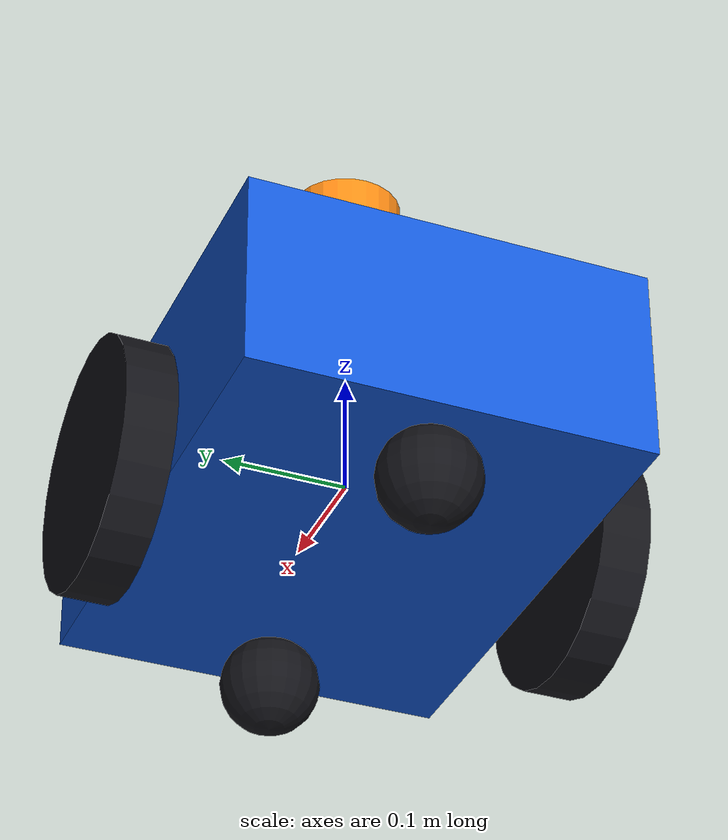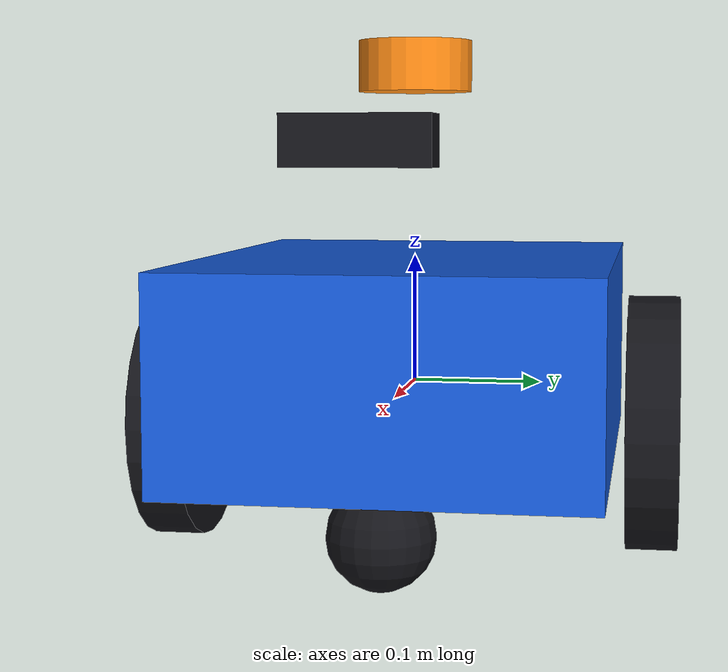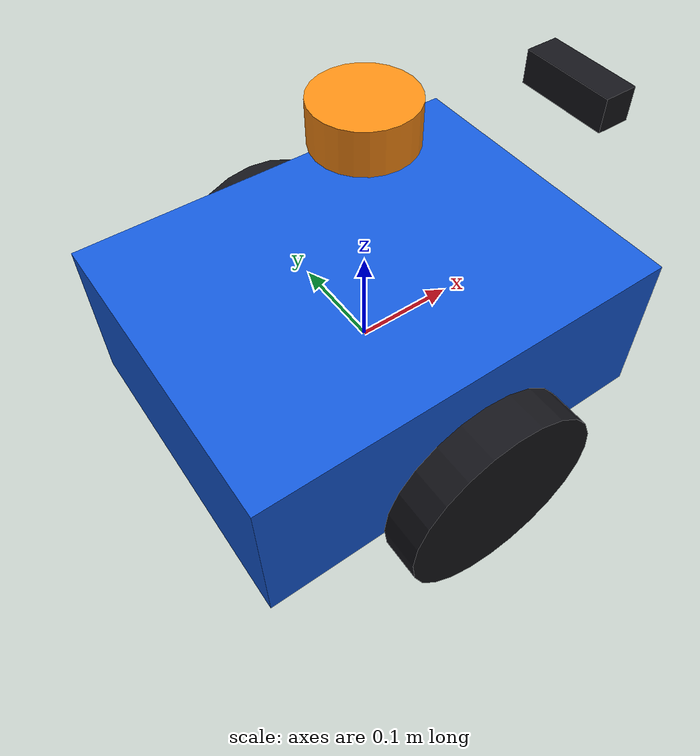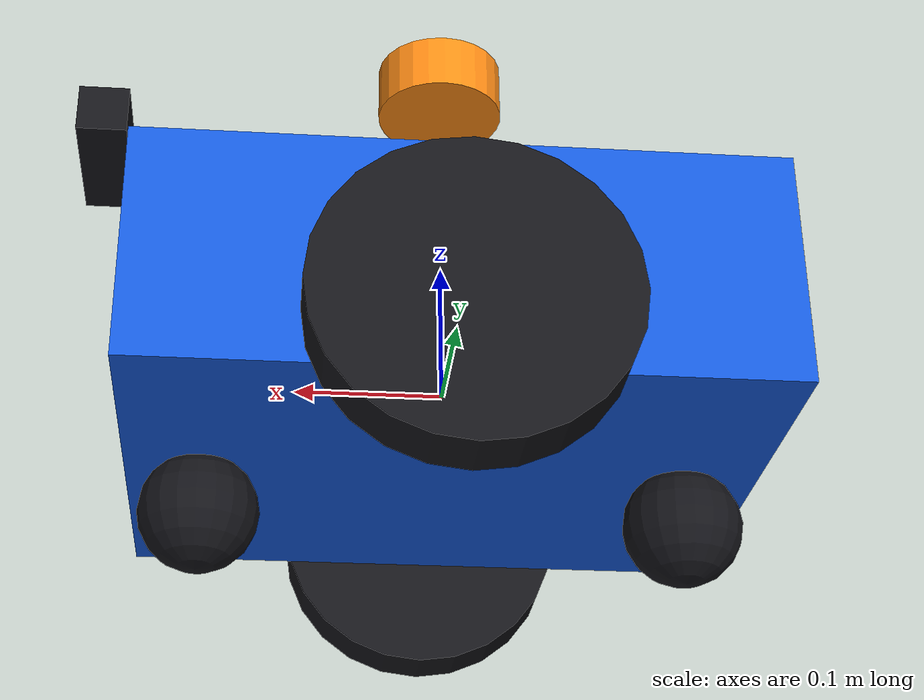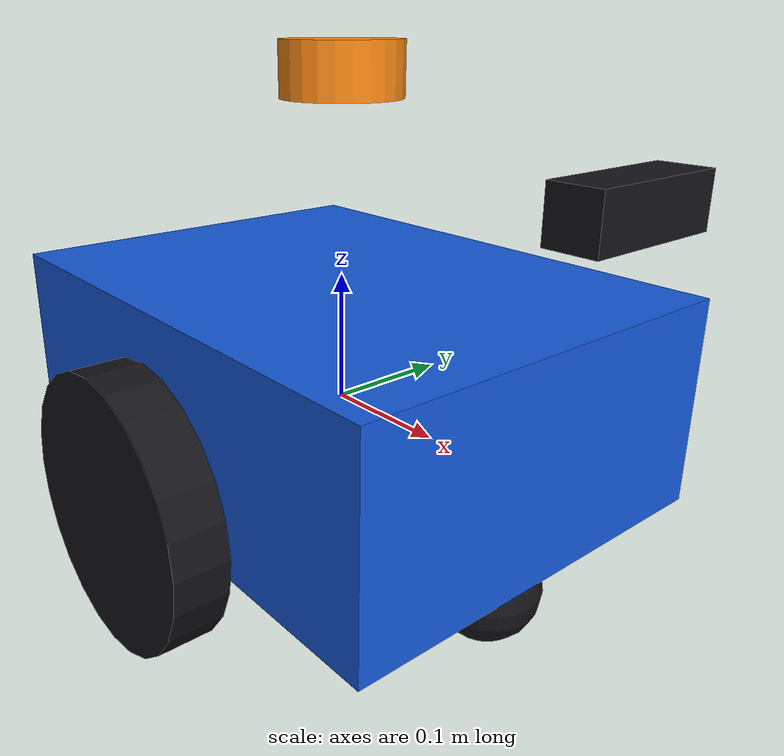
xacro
<?xml version="1.0"?>
<robot name="demo_robot" xmlns:xacro="http://www.ros.org/wiki/xacro">
  <material name="blue"><color rgba="0.08 0.35 0.85 1"/></material>
  <material name="black"><color rgba="0.08 0.08 0.10 1"/></material>
  <material name="orange"><color rgba="1 0.55 0.08 1"/></material>
  <link name="base_link">
    <inertial><mass value="5"/><inertia ixx="0.08" iyy="0.10" izz="0.12" ixy="0" ixz="0" iyz="0"/></inertial>
    <visual><origin xyz="0 0 0.02"/><geometry><box size="0.42 0.32 0.16"/></geometry><material name="blue"/></visual>
    <collision name="body_collision"><origin xyz="0 0 0.02"/><geometry><box size="0.42 0.32 0.16"/></geometry></collision>
  </link>
  <xacro:macro name="wheel" params="side y">
    <link name="${side}_wheel">
      <inertial><mass value="0.3"/><inertia ixx="0.001" iyy="0.0015" izz="0.001" ixy="0" ixz="0" iyz="0"/></inertial>
      <visual><origin rpy="1.57079632679 0 0"/><geometry><cylinder radius="0.10" length="0.04"/></geometry><material name="black"/></visual>
      <collision><origin rpy="1.57079632679 0 0"/><geometry><cylinder radius="0.10" length="0.04"/></geometry></collision>
    </link>
    <joint name="${side}_wheel_joint" type="continuous"><parent link="base_link"/><child link="${side}_wheel"/>
      <origin xyz="0 ${y} -0.03"/><axis xyz="0 1 0"/><limit effort="20" velocity="20"/><dynamics damping="0.05"/></joint>
    <gazebo reference="${side}_wheel"><mu1>1.0</mu1><mu2>1.0</mu2><material>Gazebo/Black</material></gazebo>
  </xacro:macro>
  <xacro:wheel side="left" y="0.19"/><xacro:wheel side="right" y="-0.19"/>
  <!-- Front and rear low-friction supports keep the sensor platform level. -->
  <xacro:macro name="caster" params="name x">
    <link name="${name}">
      <inertial><mass value="0.1"/><inertia ixx="0.00004" iyy="0.00004" izz="0.00004" ixy="0" ixz="0" iyz="0"/></inertial>
      <visual><geometry><sphere radius="0.04"/></geometry><material name="black"/></visual>
      <collision><geometry><sphere radius="0.04"/></geometry></collision>
    </link>
    <joint name="${name}_joint" type="fixed"><parent link="base_link"/><child link="${name}"/><origin xyz="${x} 0 -0.09"/></joint>
    <gazebo reference="${name}"><mu1>0.001</mu1><mu2>0.001</mu2></gazebo>
  </xacro:macro>
  <xacro:caster name="rear_caster" x="-0.16"/>
  <xacro:caster name="front_caster" x="0.16"/>
  <link name="lidar_link"><visual><geometry><cylinder radius="0.045" length="0.04"/></geometry><material name="orange"/></visual></link>
  <joint name="lidar_joint" type="fixed"><parent link="base_link"/><child link="lidar_link"/><origin xyz="0 0 0.25"/></joint>
  <link name="camera_link"><visual><geometry><box size="0.035 0.10 0.035"/></geometry><material name="black"/></visual></link>
  <joint name="camera_joint" type="fixed"><parent link="base_link"/><child link="camera_link"/><origin xyz="0.24 0 0.19"/></joint>
  <link name="camera_optical_frame"/>
  <joint name="camera_optical_joint" type="fixed"><parent link="camera_link"/><child link="camera_optical_frame"/><origin rpy="-1.57079632679 0 -1.57079632679"/></joint>
  <link name="gps_link"/>
  <joint name="gps_joint" type="fixed"><parent link="base_link"/><child link="gps_link"/><origin xyz="0 0 0.12"/></joint>
  <gazebo reference="base_link">
    <material>Gazebo/Blue</material>
    <sensor name="lidar" type="gpu_lidar">
      <pose>0 0 0.25 0 0 0</pose><topic>/scan</topic><update_rate>10</update_rate><always_on>true</always_on>
      <lidar><scan><horizontal><samples>360</samples><resolution>1</resolution><min_angle>-3.14159265359</min_angle><max_angle>3.14159265359</max_angle></horizontal></scan>
        <range><min>0.08</min><max>10</max><resolution>0.01</resolution></range></lidar>
    </sensor>
    <sensor name="astra_depth" type="rgbd_camera">
      <pose>0.24 0 0.19 0 0 0</pose><topic>/camera</topic><update_rate>10</update_rate><always_on>true</always_on>
      <camera><horizontal_fov>1.2</horizontal_fov><image><width>160</width><height>120</height><format>R8G8B8</format></image>
        <clip><near>0.1</near><far>8</far></clip><depth_camera><clip><near>0.1</near><far>8</far></clip></depth_camera></camera>
    </sensor>
    <sensor name="gps" type="navsat"><pose>0 0 0.12 0 0 0</pose><topic>/gps/fix</topic><update_rate>10</update_rate><always_on>true</always_on></sensor>
    <sensor name="body_contact" type="contact"><topic>/contacts</topic><update_rate>50</update_rate><always_on>true</always_on>
      <contact><collision>base_link_fixed_joint_lump__body_collision_collision</collision></contact></sensor>
  </gazebo>
  <gazebo>
    <plugin filename="libignition-gazebo-diff-drive-system.so" name="ignition::gazebo::systems::DiffDrive">
      <left_joint>left_wheel_joint</left_joint><right_joint>right_wheel_joint</right_joint><wheel_separation>0.38</wheel_separation><wheel_radius>0.10</wheel_radius>
      <topic>/cmd_vel</topic><odom_topic>/odom</odom_topic><tf_topic>/odom_tf</tf_topic><frame_id>odom</frame_id><child_frame_id>base_link</child_frame_id><odom_publish_frequency>30</odom_publish_frequency>
    </plugin>
    <plugin filename="libignition-gazebo-joint-state-publisher-system.so" name="ignition::gazebo::systems::JointStatePublisher"><topic>/joint_states</topic></plugin>
  </gazebo>
</robot>
